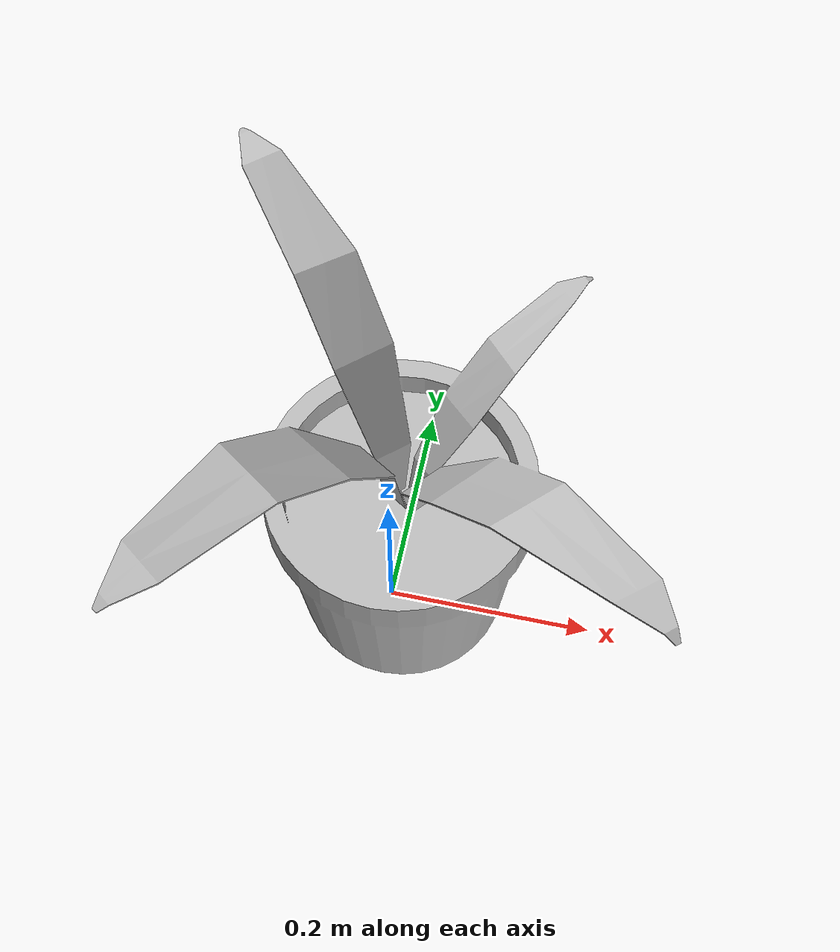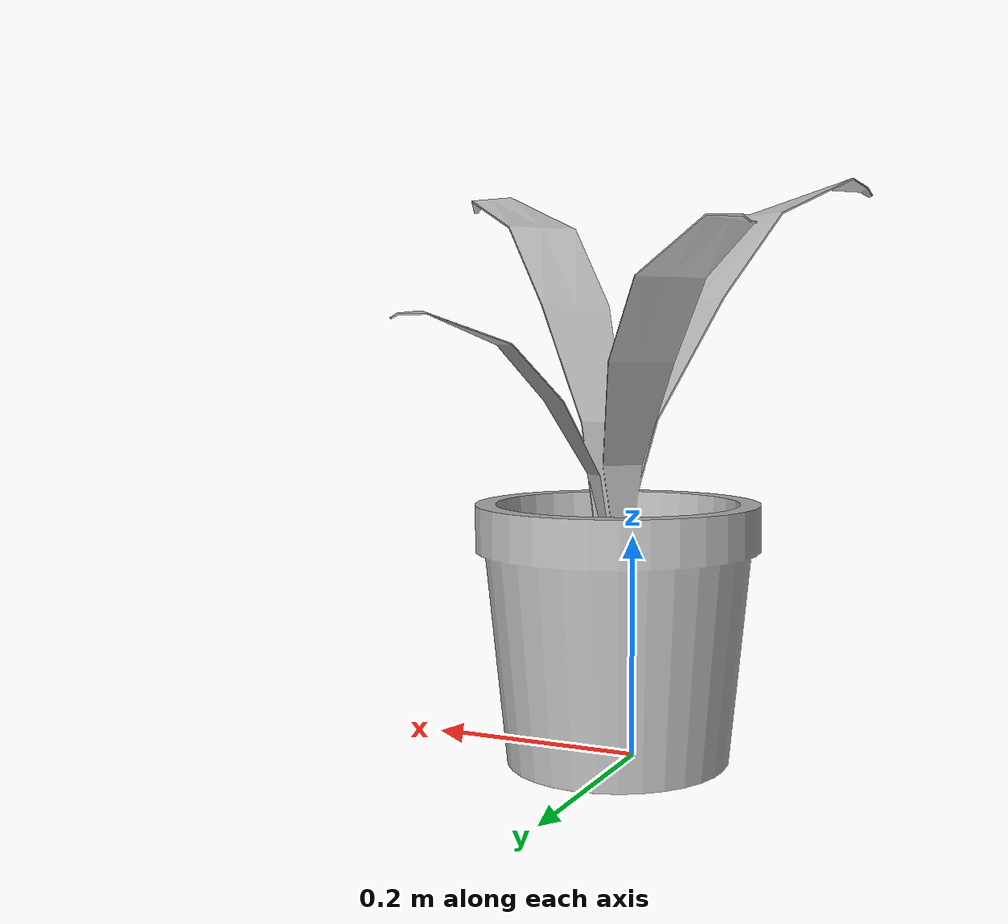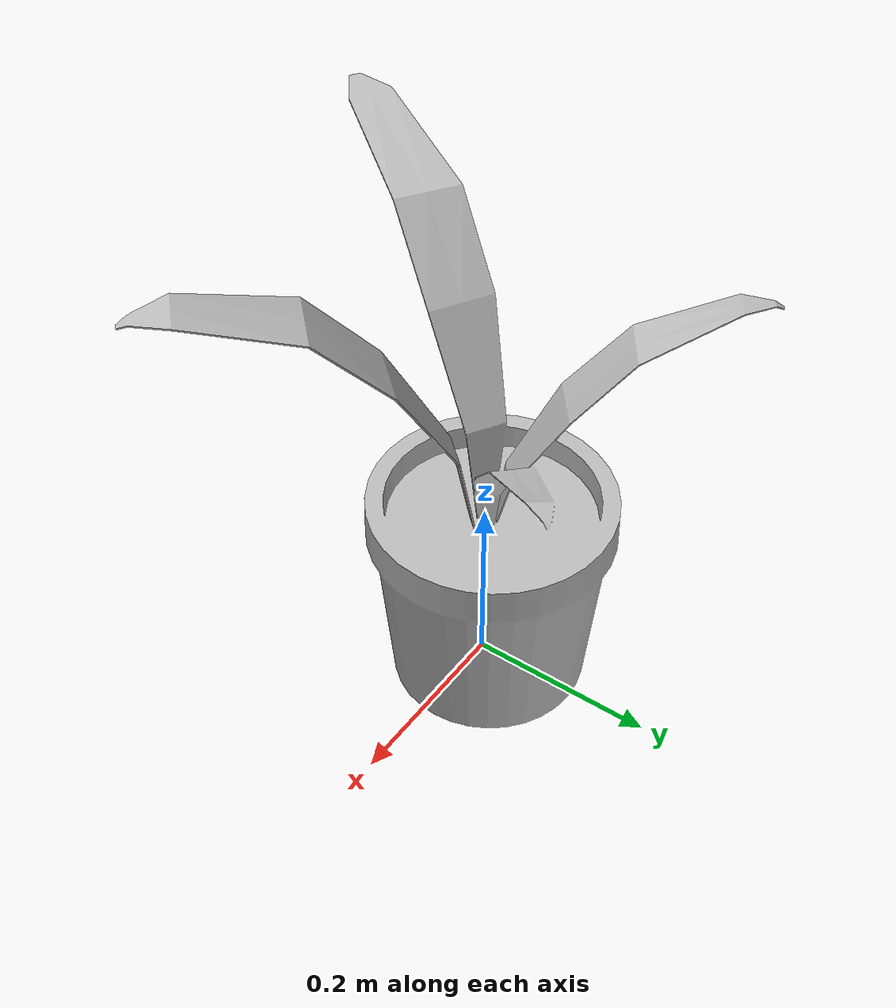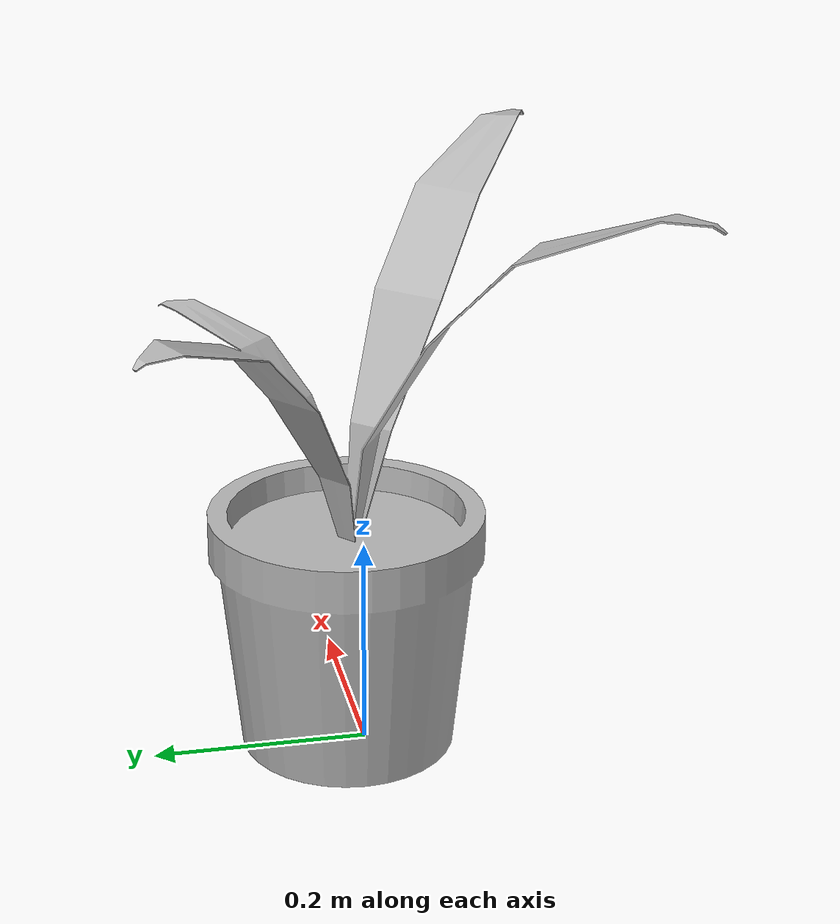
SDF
<?xml version="1.0" ?>
<sdf version="1.6">
  <model name="simple_potted_plant">
    <!-- The grasp test does not need plant deformation. Keeping the plant
         static avoids numerical drift and makes contact measurements repeatable. -->
    <static>true</static>
    <self_collide>false</self_collide>

    <link name="plant_link">
      <gravity>false</gravity>

      <visual name="plant_visual">
        <!-- Assimp exports Z_UP Collada as Y_UP OBJ; this restores Z_UP. -->
        <pose>0 0 0.0001 1.57079632679 0 0</pose>
        <geometry>
          <mesh>
            <uri>model://simple_potted_plant/meshes/FlowerPot_fortress.obj</uri>
            <scale>0.10 0.10 0.10</scale>
          </mesh>
        </geometry>
      </visual>

      <collision name="pot_collision">
        <!-- The pot mesh spans z=0.00001..0.23186 m after its visual
             transform. Match those vertical bounds instead of ending 7.2 cm
             below the visible rim. -->
        <pose>0 0 0.116 0 0 0</pose>
        <geometry><cylinder><radius>0.12</radius><length>0.232</length></cylinder></geometry>
        <surface>
          <friction><ode><mu>0.8</mu><mu2>0.8</mu2></ode></friction>
          <contact><ode><kp>1000000</kp><kd>10</kd><max_vel>0.01</max_vel><min_depth>0.001</min_depth></ode></contact>
        </surface>
      </collision>

      <collision name="leaf_1_segment_4_collision">
        <pose>-0.0985 -0.1630 0.5000 0 -0.4922 -2.1030</pose>
        <geometry><box><size>0.1265 0.0650 0.0080</size></box></geometry>
        <max_contacts>20</max_contacts>
        <surface>
          <friction><ode><mu>0.6</mu><mu2>0.6</mu2></ode></friction>
          <contact><ode><kp>200000</kp><kd>20</kd><max_vel>0.005</max_vel><min_depth>0.0005</min_depth></ode></contact>
        </surface>
      </collision>
      <collision name="leaf_2_segment_4_collision">
        <pose>0.1775 -0.1400 0.5025 0 -0.4632 -0.6889</pose>
        <geometry><box><size>0.1311 0.0650 0.0080</size></box></geometry>
        <max_contacts>20</max_contacts>
        <surface>
          <friction><ode><mu>0.6</mu><mu2>0.6</mu2></ode></friction>
          <contact><ode><kp>200000</kp><kd>20</kd><max_vel>0.005</max_vel><min_depth>0.0005</min_depth></ode></contact>
        </surface>
      </collision>
      <collision name="leaf_3_segment_4_collision">
        <pose>0.1080 0.1100 0.3825 0 -0.3591 0.8491</pose>
        <geometry><box><size>0.0791 0.0550 0.0080</size></box></geometry>
        <max_contacts>20</max_contacts>
        <surface>
          <friction><ode><mu>0.6</mu><mu2>0.6</mu2></ode></friction>
          <contact><ode><kp>200000</kp><kd>20</kd><max_vel>0.005</max_vel><min_depth>0.0005</min_depth></ode></contact>
        </surface>
      </collision>
      <collision name="leaf_4_segment_4_collision">
        <pose>-0.1035 0.1450 0.4365 0 -0.4283 2.3036</pose>
        <geometry><box><size>0.1115 0.0600 0.0080</size></box></geometry>
        <max_contacts>20</max_contacts>
        <surface>
          <friction><ode><mu>0.6</mu><mu2>0.6</mu2></ode></friction>
          <contact><ode><kp>200000</kp><kd>20</kd><max_vel>0.005</max_vel><min_depth>0.0005</min_depth></ode></contact>
        </surface>
      </collision>

      <collision name="leaf_1_segment_1_collision">
        <pose>0.0025 -0.0025 0.2425 0 -1.3262 -2.3562</pose>
        <geometry><box><size>0.0956 0.0200 0.0080</size></box></geometry>
        <max_contacts>20</max_contacts>
        <surface>
          <friction><ode><mu>0.6</mu><mu2>0.6</mu2></ode></friction>
          <contact><ode><kp>200000</kp><kd>20</kd><max_vel>0.005</max_vel><min_depth>0.0005</min_depth></ode></contact>
        </surface>
      </collision>
      <collision name="leaf_1_segment_2_collision">
        <pose>-0.0165 -0.0300 0.3350 0 -1.1385 -2.0926</pose>
        <geometry><box><size>0.1181 0.0350 0.0080</size></box></geometry>
        <max_contacts>20</max_contacts>
        <surface>
          <friction><ode><mu>0.6</mu><mu2>0.6</mu2></ode></friction>
          <contact><ode><kp>200000</kp><kd>20</kd><max_vel>0.005</max_vel><min_depth>0.0005</min_depth></ode></contact>
        </surface>
      </collision>
      <collision name="leaf_1_segment_3_collision">
        <pose>-0.0500 -0.0840 0.4285 0 -0.8211 -2.1451</pose>
        <geometry><box><size>0.1269 0.0500 0.0080</size></box></geometry>
        <max_contacts>20</max_contacts>
        <surface>
          <friction><ode><mu>0.6</mu><mu2>0.6</mu2></ode></friction>
          <contact><ode><kp>200000</kp><kd>20</kd><max_vel>0.005</max_vel><min_depth>0.0005</min_depth></ode></contact>
        </surface>
      </collision>
      <collision name="leaf_1_segment_5_collision">
        <pose>-0.1410 -0.2410 0.5290 0 -0.0273 -2.0222</pose>
        <geometry><box><size>0.0814 0.0450 0.0080</size></box></geometry>
        <max_contacts>20</max_contacts>
        <surface>
          <friction><ode><mu>0.6</mu><mu2>0.6</mu2></ode></friction>
          <contact><ode><kp>200000</kp><kd>20</kd><max_vel>0.005</max_vel><min_depth>0.0005</min_depth></ode></contact>
        </surface>
      </collision>
      <collision name="leaf_2_segment_1_collision">
        <pose>0.0305 -0.0025 0.2405 0 -1.3767 -1.0304</pose>
        <geometry><box><size>0.0987 0.0200 0.0080</size></box></geometry>
        <max_contacts>20</max_contacts>
        <surface>
          <friction><ode><mu>0.6</mu><mu2>0.6</mu2></ode></friction>
          <contact><ode><kp>200000</kp><kd>20</kd><max_vel>0.005</max_vel><min_depth>0.0005</min_depth></ode></contact>
        </surface>
      </collision>
      <collision name="leaf_2_segment_2_collision">
        <pose>0.0550 -0.0325 0.3375 0 -1.0502 -0.8442</pose>
        <geometry><box><size>0.1290 0.0350 0.0080</size></box></geometry>
        <max_contacts>20</max_contacts>
        <surface>
          <friction><ode><mu>0.6</mu><mu2>0.6</mu2></ode></friction>
          <contact><ode><kp>200000</kp><kd>20</kd><max_vel>0.005</max_vel><min_depth>0.0005</min_depth></ode></contact>
        </surface>
      </collision>
      <collision name="leaf_2_segment_3_collision">
        <pose>0.1050 -0.0800 0.4325 0 -0.8277 -0.6947</pose>
        <geometry><box><size>0.1234 0.0500 0.0080</size></box></geometry>
        <max_contacts>20</max_contacts>
        <surface>
          <friction><ode><mu>0.6</mu><mu2>0.6</mu2></ode></friction>
          <contact><ode><kp>200000</kp><kd>20</kd><max_vel>0.005</max_vel><min_depth>0.0005</min_depth></ode></contact>
        </surface>
      </collision>
      <collision name="leaf_2_segment_5_collision">
        <pose>0.2455 -0.1930 0.5275 0 0.0799 -0.6147</pose>
        <geometry><box><size>0.0706 0.0450 0.0080</size></box></geometry>
        <max_contacts>20</max_contacts>
        <surface>
          <friction><ode><mu>0.6</mu><mu2>0.6</mu2></ode></friction>
          <contact><ode><kp>200000</kp><kd>20</kd><max_vel>0.005</max_vel><min_depth>0.0005</min_depth></ode></contact>
        </surface>
      </collision>
      <collision name="leaf_3_segment_1_collision">
        <pose>0.0225 0.0190 0.2235 0 -1.3745 0.4993</pose>
        <geometry><box><size>0.0722 0.0180 0.0080</size></box></geometry>
        <max_contacts>20</max_contacts>
        <surface>
          <friction><ode><mu>0.6</mu><mu2>0.6</mu2></ode></friction>
          <contact><ode><kp>200000</kp><kd>20</kd><max_vel>0.005</max_vel><min_depth>0.0005</min_depth></ode></contact>
        </surface>
      </collision>
      <collision name="leaf_3_segment_2_collision">
        <pose>0.0415 0.0360 0.2875 0 -1.0315 0.8036</pose>
        <geometry><box><size>0.0837 0.0300 0.0080</size></box></geometry>
        <max_contacts>20</max_contacts>
        <surface>
          <friction><ode><mu>0.6</mu><mu2>0.6</mu2></ode></friction>
          <contact><ode><kp>200000</kp><kd>20</kd><max_vel>0.005</max_vel><min_depth>0.0005</min_depth></ode></contact>
        </surface>
      </collision>
      <collision name="leaf_3_segment_3_collision">
        <pose>0.0705 0.0675 0.3450 0 -0.8189 0.8459</pose>
        <geometry><box><size>0.0765 0.0450 0.0080</size></box></geometry>
        <max_contacts>20</max_contacts>
        <surface>
          <friction><ode><mu>0.6</mu><mu2>0.6</mu2></ode></friction>
          <contact><ode><kp>200000</kp><kd>20</kd><max_vel>0.005</max_vel><min_depth>0.0005</min_depth></ode></contact>
        </surface>
      </collision>
      <collision name="leaf_3_segment_5_collision">
        <pose>0.1395 0.1500 0.3940 0 0.0563 1.0062</pose>
        <geometry><box><size>0.0436 0.0350 0.0080</size></box></geometry>
        <max_contacts>20</max_contacts>
        <surface>
          <friction><ode><mu>0.6</mu><mu2>0.6</mu2></ode></friction>
          <contact><ode><kp>200000</kp><kd>20</kd><max_vel>0.005</max_vel><min_depth>0.0005</min_depth></ode></contact>
        </surface>
      </collision>
      <collision name="leaf_4_segment_1_collision">
        <pose>0.0025 0.0180 0.2165 0 -1.3564 1.8737</pose>
        <geometry><box><size>0.0868 0.0180 0.0080</size></box></geometry>
        <max_contacts>20</max_contacts>
        <surface>
          <friction><ode><mu>0.6</mu><mu2>0.6</mu2></ode></friction>
          <contact><ode><kp>200000</kp><kd>20</kd><max_vel>0.005</max_vel><min_depth>0.0005</min_depth></ode></contact>
        </surface>
      </collision>
      <collision name="leaf_4_segment_2_collision">
        <pose>-0.0150 0.0455 0.3000 0 -1.0705 2.2265</pose>
        <geometry><box><size>0.1106 0.0320 0.0080</size></box></geometry>
        <max_contacts>20</max_contacts>
        <surface>
          <friction><ode><mu>0.6</mu><mu2>0.6</mu2></ode></friction>
          <contact><ode><kp>200000</kp><kd>20</kd><max_vel>0.005</max_vel><min_depth>0.0005</min_depth></ode></contact>
        </surface>
      </collision>
      <collision name="leaf_4_segment_3_collision">
        <pose>-0.0510 0.0875 0.3800 0 -0.8495 2.3217</pose>
        <geometry><box><size>0.1012 0.0480 0.0080</size></box></geometry>
        <max_contacts>20</max_contacts>
        <surface>
          <friction><ode><mu>0.6</mu><mu2>0.6</mu2></ode></friction>
          <contact><ode><kp>200000</kp><kd>20</kd><max_vel>0.005</max_vel><min_depth>0.0005</min_depth></ode></contact>
        </surface>
      </collision>
      <collision name="leaf_4_segment_5_collision">
        <pose>-0.1535 0.1975 0.4550 0 0.1173 2.3840</pose>
        <geometry><box><size>0.0593 0.0400 0.0080</size></box></geometry>
        <max_contacts>20</max_contacts>
        <surface>
          <friction><ode><mu>0.6</mu><mu2>0.6</mu2></ode></friction>
          <contact><ode><kp>200000</kp><kd>20</kd><max_vel>0.005</max_vel><min_depth>0.0005</min_depth></ode></contact>
        </surface>
      </collision>

      <sensor name="leaf_1_segment_4_contact_sensor" type="contact">
        <always_on>true</always_on><update_rate>100</update_rate>
        <contact><collision>leaf_1_segment_4_collision</collision><topic>/plant/leaf_1_contacts_gz</topic></contact>
      </sensor>
      <sensor name="leaf_2_segment_4_contact_sensor" type="contact">
        <always_on>true</always_on><update_rate>100</update_rate>
        <contact><collision>leaf_2_segment_4_collision</collision><topic>/plant/leaf_2_contacts_gz</topic></contact>
      </sensor>
      <sensor name="leaf_3_segment_4_contact_sensor" type="contact">
        <always_on>true</always_on><update_rate>100</update_rate>
        <contact><collision>leaf_3_segment_4_collision</collision><topic>/plant/leaf_3_contacts_gz</topic></contact>
      </sensor>
      <sensor name="leaf_4_segment_4_contact_sensor" type="contact">
        <always_on>true</always_on><update_rate>100</update_rate>
        <contact><collision>leaf_4_segment_4_collision</collision><topic>/plant/leaf_4_contacts_gz</topic></contact>
      </sensor>
      <!-- Every proxy has a contact sensor. The five publishers for one leaf
           intentionally share one ROS topic so callers only monitor four topics. -->
      <sensor name="leaf_1_segment_1_contact_sensor" type="contact">
        <always_on>true</always_on><update_rate>100</update_rate>
        <contact><collision>leaf_1_segment_1_collision</collision><topic>/plant/leaf_1_contacts_gz</topic></contact>
      </sensor>
      <sensor name="leaf_1_segment_2_contact_sensor" type="contact">
        <always_on>true</always_on><update_rate>100</update_rate>
        <contact><collision>leaf_1_segment_2_collision</collision><topic>/plant/leaf_1_contacts_gz</topic></contact>
      </sensor>
      <sensor name="leaf_1_segment_3_contact_sensor" type="contact">
        <always_on>true</always_on><update_rate>100</update_rate>
        <contact><collision>leaf_1_segment_3_collision</collision><topic>/plant/leaf_1_contacts_gz</topic></contact>
      </sensor>
      <sensor name="leaf_1_segment_5_contact_sensor" type="contact">
        <always_on>true</always_on><update_rate>100</update_rate>
        <contact><collision>leaf_1_segment_5_collision</collision><topic>/plant/leaf_1_contacts_gz</topic></contact>
      </sensor>
      <sensor name="leaf_2_segment_1_contact_sensor" type="contact">
        <always_on>true</always_on><update_rate>100</update_rate>
        <contact><collision>leaf_2_segment_1_collision</collision><topic>/plant/leaf_2_contacts_gz</topic></contact>
      </sensor>
      <sensor name="leaf_2_segment_2_contact_sensor" type="contact">
        <always_on>true</always_on><update_rate>100</update_rate>
        <contact><collision>leaf_2_segment_2_collision</collision><topic>/plant/leaf_2_contacts_gz</topic></contact>
      </sensor>
      <sensor name="leaf_2_segment_3_contact_sensor" type="contact">
        <always_on>true</always_on><update_rate>100</update_rate>
        <contact><collision>leaf_2_segment_3_collision</collision><topic>/plant/leaf_2_contacts_gz</topic></contact>
      </sensor>
      <sensor name="leaf_2_segment_5_contact_sensor" type="contact">
        <always_on>true</always_on><update_rate>100</update_rate>
        <contact><collision>leaf_2_segment_5_collision</collision><topic>/plant/leaf_2_contacts_gz</topic></contact>
      </sensor>
      <sensor name="leaf_3_segment_1_contact_sensor" type="contact">
        <always_on>true</always_on><update_rate>100</update_rate>
        <contact><collision>leaf_3_segment_1_collision</collision><topic>/plant/leaf_3_contacts_gz</topic></contact>
      </sensor>
      <sensor name="leaf_3_segment_2_contact_sensor" type="contact">
        <always_on>true</always_on><update_rate>100</update_rate>
        <contact><collision>leaf_3_segment_2_collision</collision><topic>/plant/leaf_3_contacts_gz</topic></contact>
      </sensor>
      <sensor name="leaf_3_segment_3_contact_sensor" type="contact">
        <always_on>true</always_on><update_rate>100</update_rate>
        <contact><collision>leaf_3_segment_3_collision</collision><topic>/plant/leaf_3_contacts_gz</topic></contact>
      </sensor>
      <sensor name="leaf_3_segment_5_contact_sensor" type="contact">
        <always_on>true</always_on><update_rate>100</update_rate>
        <contact><collision>leaf_3_segment_5_collision</collision><topic>/plant/leaf_3_contacts_gz</topic></contact>
      </sensor>
      <sensor name="leaf_4_segment_1_contact_sensor" type="contact">
        <always_on>true</always_on><update_rate>100</update_rate>
        <contact><collision>leaf_4_segment_1_collision</collision><topic>/plant/leaf_4_contacts_gz</topic></contact>
      </sensor>
      <sensor name="leaf_4_segment_2_contact_sensor" type="contact">
        <always_on>true</always_on><update_rate>100</update_rate>
        <contact><collision>leaf_4_segment_2_collision</collision><topic>/plant/leaf_4_contacts_gz</topic></contact>
      </sensor>
      <sensor name="leaf_4_segment_3_contact_sensor" type="contact">
        <always_on>true</always_on><update_rate>100</update_rate>
        <contact><collision>leaf_4_segment_3_collision</collision><topic>/plant/leaf_4_contacts_gz</topic></contact>
      </sensor>
      <sensor name="leaf_4_segment_5_contact_sensor" type="contact">
        <always_on>true</always_on><update_rate>100</update_rate>
        <contact><collision>leaf_4_segment_5_collision</collision><topic>/plant/leaf_4_contacts_gz</topic></contact>
      </sensor>

    </link>
  </model>
</sdf>
